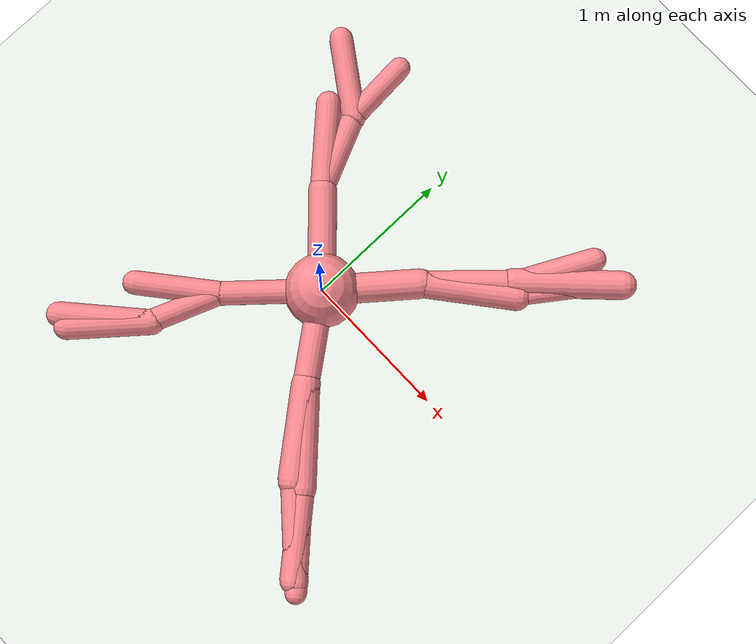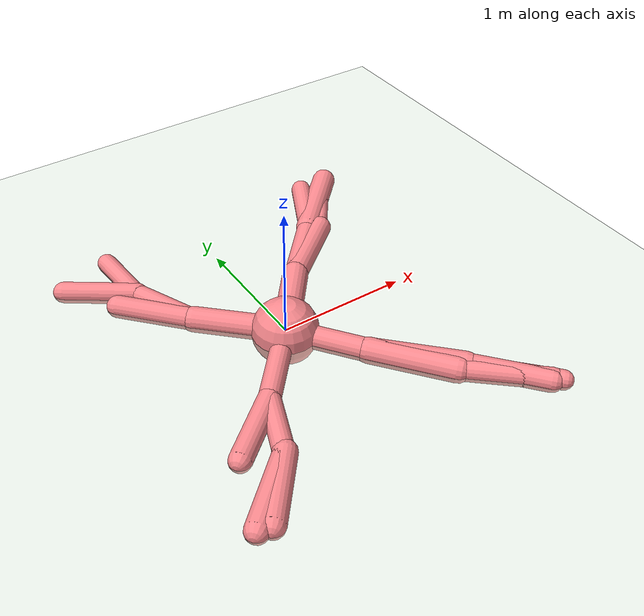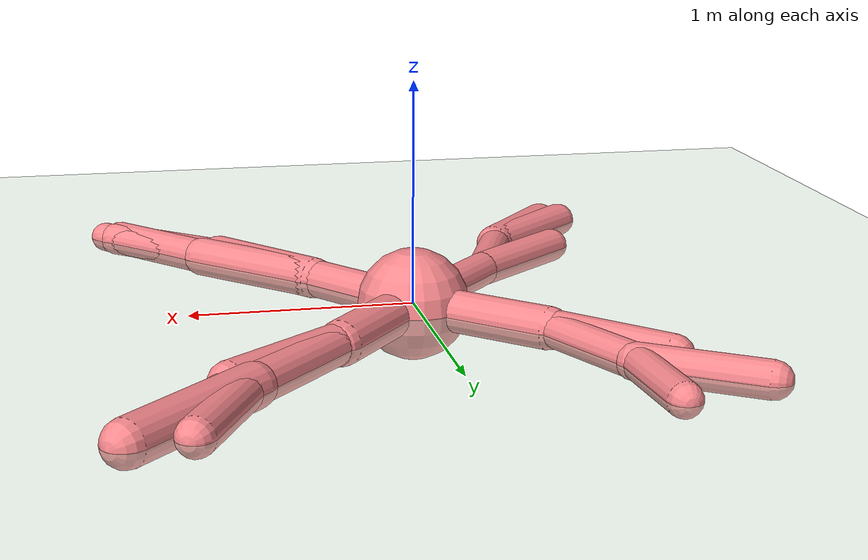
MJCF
<mujoco model="ant">
  <compiler angle="degree" coordinate="global" inertiafromgeom="true"/>
  <option integrator="RK4" timestep="0.01"/>
  <default>
    <joint armature="1" damping="1" limited="true"/>
    <geom conaffinity="0" condim="3" density="5.0" friction="1 0.5 0.5" margin="0.01" rgba=".98 .54 .56 1."/>
  </default>
  <visual>
    <headlight ambient=".1 .1 .1" diffuse=".6 .6 .6" specular="0.3 0.3 0.3"/>
    <map znear=".01"/>
    <quality shadowsize="16384"/>
  </visual>
  <worldbody>
    <light cutoff="100" diffuse="1 1 1" dir="-0 0 -1.3" directional="true" exponent="1" pos="0 0 1.3" specular=".1 .1 .1"/>
    <geom conaffinity="1" condim="3" name="floor" pos="0 0 0" rgba="0.8 0.9 0.8 1" size="200 200 .125" type="plane" material="grid_new"/>
    <body name="0" pos="0 0 0">
      <camera name="track" mode="trackcom" pos="0 -3 0.3" xyaxes="1 0 0 0 0 1"/>
      <geom pos="0 0 0" size="0.25" type="sphere"/>
      <joint armature="0" damping="0" limited="false" margin="0.01" name="0_joint" pos="0 0 0" type="free"/>
      <body name="1" pos="0 0 0">
        <joint axis="-0.707107 0.707107 0" name="1_joint" pos="0 0 0" range="-30 30" type="hinge"/>
        <geom fromto="-0.002207 -0.002693 0 0.409794 0.5 0" size="0.099998" type="capsule"/>
        <body name="11" pos="0.409794 0.5 0">
          <joint axis="-0.707107 0.707107 0" name="11_joint" pos="0.409794 0.5 0" range="-30 30" type="hinge"/>
          <geom fromto="0.409782 0.499987 0 0.840451 0.965026 0" size="0.085475" type="capsule"/>
          <body name="111" pos="0.840451 0.965026 0">
            <joint axis="-0.707107 0.707107 0" name="111_joint" pos="0.840451 0.965026 0" range="-30 30" type="hinge"/>
            <geom fromto="0.8228 0.947223 0 1.329654 1.458434 0" size="0.095718" type="capsule"/>
          </body>
          <body name="211" pos="0.840451 0.965026 0">
            <joint axis="-0.707107 0.707107 0" name="211_joint" pos="0.840451 0.965026 0" range="-30 30" type="hinge"/>
            <geom fromto="0.840422 0.964969 0 1.083403 1.444179 0" size="0.080426" type="capsule"/>
          </body>
        </body>
        <body name="21" pos="0.409794 0.5 0">
          <joint axis="-0.707107 0.707107 0" name="21_joint" pos="0.409794 0.5 0" range="-30 30" type="hinge"/>
          <geom fromto="0.408563 0.499013 0 0.909117 0.900348 0" size="0.091289" type="capsule"/>
          <body name="121" pos="0.909117 0.900348 0">
            <joint axis="-0.707107 0.707107 0" name="121_joint" pos="0.909117 0.900348 0" range="-30 30" type="hinge"/>
            <geom fromto="0.908609 0.899652 0 1.265311 1.388319 0" size="0.059477" type="capsule"/>
          </body>
        </body>
      </body>
      <body name="2" pos="0 0 0">
        <joint axis="-0.707107 -0.707107 0" name="2_joint" pos="0 0 0" range="-30 30" type="hinge"/>
        <geom fromto="0.000114 -0.000108 0 -0.491759 0.468222 0" size="0.09501" type="capsule"/>
        <body name="12" pos="-0.491759 0.468222 0">
          <joint axis="-0.707107 -0.707107 0" name="12_joint" pos="-0.491759 0.468222 0" range="-30 30" type="hinge"/>
          <geom fromto="-0.490445 0.465305 0 -0.714123 0.962078 0" size="0.076048" type="capsule"/>
          <body name="112" pos="-0.714123 0.962078 0">
            <joint axis="-0.707107 -0.707107 0" name="112_joint" pos="-0.714123 0.962078 0" range="-30 30" type="hinge"/>
            <geom fromto="-0.70721 0.957302 0 -1.163053 1.272258 0" size="0.080379" type="capsule"/>
          </body>
          <body name="212" pos="-0.714123 0.962078 0">
            <joint axis="-0.707107 -0.707107 0" name="212_joint" pos="-0.714123 0.962078 0" range="-30 30" type="hinge"/>
            <geom fromto="-0.714078 0.961421 0 -0.745007 1.416864 0" size="0.074076" type="capsule"/>
          </body>
        </body>
        <body name="22" pos="-0.491759 0.468222 0">
          <joint axis="-0.707107 -0.707107 0" name="22_joint" pos="-0.491759 0.468222 0" range="-30 30" type="hinge"/>
          <geom fromto="-0.491309 0.467737 0 -0.893181 0.900908 0" size="0.084451" type="capsule"/>
        </body>
      </body>
      <body name="3" pos="0 0 0">
        <joint axis="0.707107 -0.707107 0" name="3_joint" pos="0 0 0" range="-30 30" type="hinge"/>
        <geom fromto="0.004682 0.00525 0 -0.44562 -0.499611 0" size="0.079507" type="capsule"/>
        <body name="13" pos="-0.44562 -0.499611 0">
          <joint axis="0.707107 -0.707107 0" name="13_joint" pos="-0.44562 -0.499611 0" range="-30 30" type="hinge"/>
          <geom fromto="-0.44562 -0.499611 0 -0.626848 -0.967656 0" size="0.076023" type="capsule"/>
          <body name="113" pos="-0.626848 -0.967656 0">
            <joint axis="0.707107 -0.707107 0" name="113_joint" pos="-0.626848 -0.967656 0" range="-30 30" type="hinge"/>
            <geom fromto="-0.613332 -0.951576 0 -0.972652 -1.379064 0" size="0.086148" type="capsule"/>
          </body>
          <body name="213" pos="-0.626848 -0.967656 0">
            <joint axis="0.707107 -0.707107 0" name="213_joint" pos="-0.626848 -0.967656 0" range="-30 30" type="hinge"/>
            <geom fromto="-0.626625 -0.967457 0 -1.068129 -1.360197 0" size="0.083934" type="capsule"/>
          </body>
        </body>
        <body name="23" pos="-0.44562 -0.499611 0">
          <joint axis="0.707107 -0.707107 0" name="23_joint" pos="-0.44562 -0.499611 0" range="-30 30" type="hinge"/>
          <geom fromto="-0.445545 -0.49955 0 -0.88464 -0.858726 0" size="0.08038" type="capsule"/>
        </body>
      </body>
      <body name="4" pos="0 0 0">
        <joint axis="0.707107 0.707107 0" name="4_joint" pos="0 0 0" range="-30 30" type="hinge"/>
        <geom fromto="-0.003067 0.004055 0 0.372038 -0.491787 0" size="0.087358" type="capsule"/>
        <body name="14" pos="0.372038 -0.491787 0">
          <joint axis="0.707107 0.707107 0" name="14_joint" pos="0.372038 -0.491787 0" range="-30 30" type="hinge"/>
          <geom fromto="0.372038 -0.491787 0 0.853322 -0.977708 0" size="0.09249" type="capsule"/>
          <body name="114" pos="0.853322 -0.977708 0">
            <joint axis="0.707107 0.707107 0" name="114_joint" pos="0.853322 -0.977708 0" range="-30 30" type="hinge"/>
            <geom fromto="0.853248 -0.977631 0 1.305322 -1.455765 0" size="0.07196" type="capsule"/>
          </body>
          <body name="214" pos="0.853322 -0.977708 0">
            <joint axis="0.707107 0.707107 0" name="214_joint" pos="0.853322 -0.977708 0" range="-30 30" type="hinge"/>
            <geom fromto="0.853321 -0.977708 0 1.233488 -1.418788 0" size="0.082271" type="capsule"/>
          </body>
        </body>
        <body name="24" pos="0.372038 -0.491787 0">
          <joint axis="0.707107 0.707107 0" name="24_joint" pos="0.372038 -0.491787 0" range="-30 30" type="hinge"/>
          <geom fromto="0.372003 -0.491744 0 0.771789 -0.986903 0" size="0.095728" type="capsule"/>
          <body name="124" pos="0.771789 -0.986903 0">
            <joint axis="0.707107 0.707107 0" name="124_joint" pos="0.771789 -0.986903 0" range="-30 30" type="hinge"/>
            <geom fromto="0.769564 -0.984971 0 1.257387 -1.408519 0" size="0.078788" type="capsule"/>
          </body>
          <body name="224" pos="0.771789 -0.986903 0">
            <joint axis="0.707107 0.707107 0" name="224_joint" pos="0.771789 -0.986903 0" range="-30 30" type="hinge"/>
            <geom fromto="0.770279 -0.98564 0 1.134715 -1.290616 0" size="0.071504" type="capsule"/>
          </body>
        </body>
      </body>
    </body>
  </worldbody>
  <actuator>
    <motor ctrllimited="true" ctrlrange="-1.0 1.0" joint="1_joint" gear="142.102568" name="1_joint"/>
    <motor ctrllimited="true" ctrlrange="-1.0 1.0" joint="2_joint" gear="65.032707" name="2_joint"/>
    <motor ctrllimited="true" ctrlrange="-1.0 1.0" joint="3_joint" gear="31.271844" name="3_joint"/>
    <motor ctrllimited="true" ctrlrange="-1.0 1.0" joint="4_joint" gear="126.794554" name="4_joint"/>
    <motor ctrllimited="true" ctrlrange="-1.0 1.0" joint="11_joint" gear="83.342056" name="11_joint"/>
    <motor ctrllimited="true" ctrlrange="-1.0 1.0" joint="12_joint" gear="43.332632" name="12_joint"/>
    <motor ctrllimited="true" ctrlrange="-1.0 1.0" joint="13_joint" gear="44.27283" name="13_joint"/>
    <motor ctrllimited="true" ctrlrange="-1.0 1.0" joint="14_joint" gear="128.625959" name="14_joint"/>
    <motor ctrllimited="true" ctrlrange="-1.0 1.0" joint="21_joint" gear="20.010501" name="21_joint"/>
    <motor ctrllimited="true" ctrlrange="-1.0 1.0" joint="22_joint" gear="170.927336" name="22_joint"/>
    <motor ctrllimited="true" ctrlrange="-1.0 1.0" joint="23_joint" gear="207.555287" name="23_joint"/>
    <motor ctrllimited="true" ctrlrange="-1.0 1.0" joint="24_joint" gear="65.46036" name="24_joint"/>
    <motor ctrllimited="true" ctrlrange="-1.0 1.0" joint="111_joint" gear="30.603532" name="111_joint"/>
    <motor ctrllimited="true" ctrlrange="-1.0 1.0" joint="112_joint" gear="95.134084" name="112_joint"/>
    <motor ctrllimited="true" ctrlrange="-1.0 1.0" joint="113_joint" gear="54.23908" name="113_joint"/>
    <motor ctrllimited="true" ctrlrange="-1.0 1.0" joint="114_joint" gear="89.198251" name="114_joint"/>
    <motor ctrllimited="true" ctrlrange="-1.0 1.0" joint="211_joint" gear="20.156801" name="211_joint"/>
    <motor ctrllimited="true" ctrlrange="-1.0 1.0" joint="213_joint" gear="117.649704" name="213_joint"/>
    <motor ctrllimited="true" ctrlrange="-1.0 1.0" joint="214_joint" gear="99.797004" name="214_joint"/>
    <motor ctrllimited="true" ctrlrange="-1.0 1.0" joint="121_joint" gear="104.07004" name="121_joint"/>
    <motor ctrllimited="true" ctrlrange="-1.0 1.0" joint="124_joint" gear="103.194975" name="124_joint"/>
    <motor ctrllimited="true" ctrlrange="-1.0 1.0" joint="224_joint" gear="95.351077" name="224_joint"/>
    <motor ctrllimited="true" ctrlrange="-1.0 1.0" joint="212_joint" gear="119.254694" name="212_joint"/>
  </actuator>
  <asset>
    <texture type="skybox" builtin="gradient" rgb1=".4 .5 .6" rgb2="0 0 0" width="100" height="100"/>
    <texture builtin="flat" height="1278" mark="cross" markrgb="1 1 1" name="texgeom" random="0.01" rgb1="0.8 0.6 0.4" rgb2="0.8 0.6 0.4" type="cube" width="127"/>
    <texture builtin="checker" height="100" name="texplane" rgb1="0 0 0" rgb2="0.8 0.8 0.8" type="2d" width="100"/>
    <material name="MatPlane" reflectance="0.5" shininess="1" specular="1" texrepeat="60 60" texture="texplane"/>
    <material name="geom" texture="texgeom" texuniform="true"/>
    <texture name="grid_new" type="2d" builtin="checker" rgb1=".1 .3 .2" rgb2=".2 .4 .3" width="1000" height="1000" mark="none" markrgb=".8 .6 .4"/>
    <material name="grid_new" texture="grid_new" texrepeat="0.2 0.2" texuniform="true" reflectance=".2"/>
  </asset>
</mujoco>
